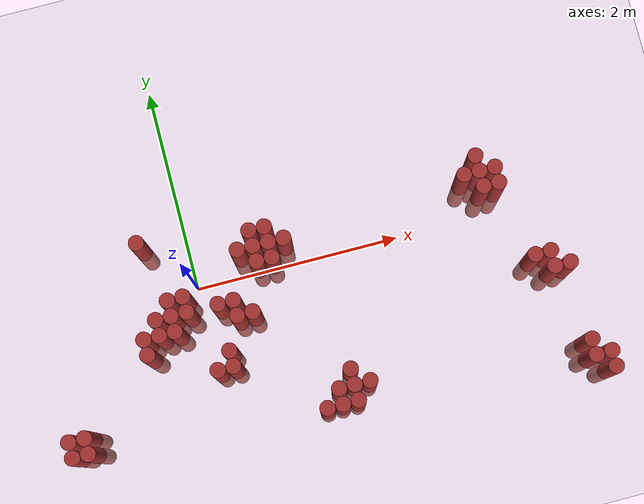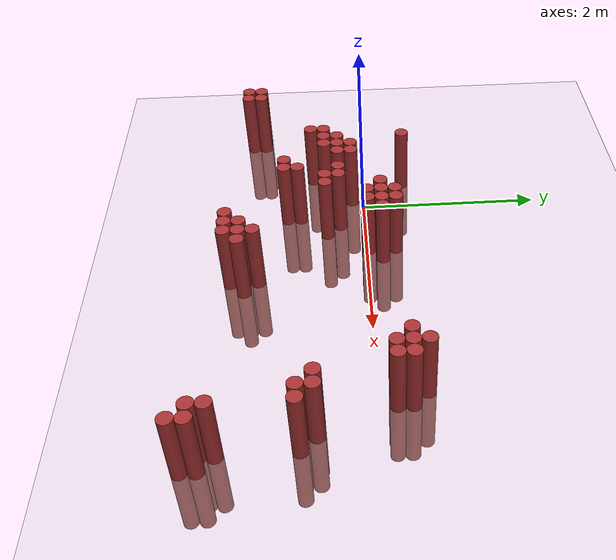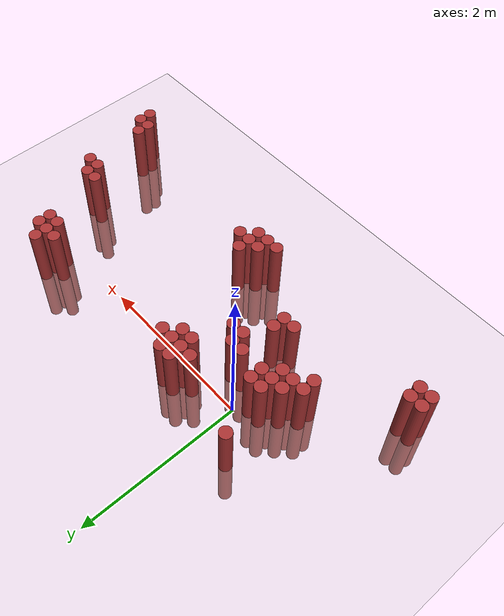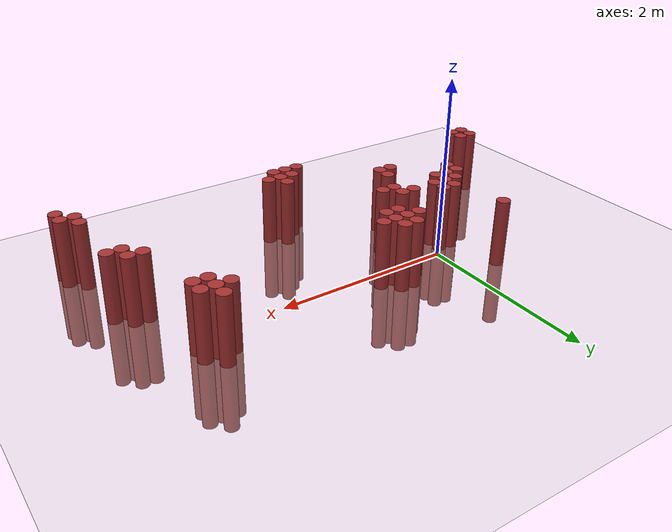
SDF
<sdf version="1.6">
 <world name="default">
  <model name="ground_plane">
   <static>1</static>
   <link name="link">
    <collision name="collision">
     <geometry><plane><normal>0 0 1</normal><size>100 100</size></plane></geometry>
     <surface><friction><ode><mu>100</mu><mu2>50</mu2></ode></friction></surface>
    </collision>
    <visual name="visual">
     <cast_shadows>0</cast_shadows>
     <geometry><plane><normal>0 0 1</normal><size>100 100</size></plane></geometry>
     <material>
      <script><uri>file://media/materials/scripts/gazebo.material</uri><name>Gazebo/Grey</name></script>
     </material>
    </visual>
   </link>
  </model>
  <model name="unit_cylinder_360">
   <static>1</static>
   <pose>-1.475000 -1.325000 0.000000 0.000000 0.000000 0.000000</pose>
   <link name="link">
    <inertial>
     <mass>1</mass>
     <inertia><ixx>0.145833</ixx><ixy>0</ixy><ixz>0</ixz><iyy>0.145833</iyy><iyz>0</iyz><izz>0.125</izz></inertia>
    </inertial>
    <collision name="collision">
     <geometry><cylinder><radius>0.075000</radius><length>1.5</length></cylinder></geometry>
    </collision>
    <visual name="visual">
     <geometry><cylinder><radius>0.075000</radius><length>1.5</length></cylinder></geometry>
     <material>
      <ambient>0.648000 0.192000 0.192000 1</ambient>
      <diffuse>0.648000 0.192000 0.192000 1</diffuse>
     </material>
     <material>
      <script><name>Gazebo/Grey</name><uri>file://media/materials/scripts/gazebo.material</uri></script>
     </material>
    </visual>
   </link>
  </model>
  <model name="unit_cylinder_361">
   <static>1</static>
   <pose>-1.475000 -1.175000 0.000000 0.000000 0.000000 0.000000</pose>
   <link name="link">
    <inertial>
     <mass>1</mass>
     <inertia><ixx>0.145833</ixx><ixy>0</ixy><ixz>0</ixz><iyy>0.145833</iyy><iyz>0</iyz><izz>0.125</izz></inertia>
    </inertial>
    <collision name="collision">
     <geometry><cylinder><radius>0.075000</radius><length>1.5</length></cylinder></geometry>
    </collision>
    <visual name="visual">
     <geometry><cylinder><radius>0.075000</radius><length>1.5</length></cylinder></geometry>
     <material>
      <ambient>0.648000 0.192000 0.192000 1</ambient>
      <diffuse>0.648000 0.192000 0.192000 1</diffuse>
     </material>
     <material>
      <script><name>Gazebo/Grey</name><uri>file://media/materials/scripts/gazebo.material</uri></script>
     </material>
    </visual>
   </link>
  </model>
  <model name="unit_cylinder_362">
   <static>1</static>
   <pose>-1.325000 -1.325000 0.000000 0.000000 0.000000 0.000000</pose>
   <link name="link">
    <inertial>
     <mass>1</mass>
     <inertia><ixx>0.145833</ixx><ixy>0</ixy><ixz>0</ixz><iyy>0.145833</iyy><iyz>0</iyz><izz>0.125</izz></inertia>
    </inertial>
    <collision name="collision">
     <geometry><cylinder><radius>0.075000</radius><length>1.5</length></cylinder></geometry>
    </collision>
    <visual name="visual">
     <geometry><cylinder><radius>0.075000</radius><length>1.5</length></cylinder></geometry>
     <material>
      <ambient>0.648000 0.192000 0.192000 1</ambient>
      <diffuse>0.648000 0.192000 0.192000 1</diffuse>
     </material>
     <material>
      <script><name>Gazebo/Grey</name><uri>file://media/materials/scripts/gazebo.material</uri></script>
     </material>
    </visual>
   </link>
  </model>
  <model name="unit_cylinder_363">
   <static>1</static>
   <pose>-1.325000 -1.175000 0.000000 0.000000 0.000000 0.000000</pose>
   <link name="link">
    <inertial>
     <mass>1</mass>
     <inertia><ixx>0.145833</ixx><ixy>0</ixy><ixz>0</ixz><iyy>0.145833</iyy><iyz>0</iyz><izz>0.125</izz></inertia>
    </inertial>
    <collision name="collision">
     <geometry><cylinder><radius>0.075000</radius><length>1.5</length></cylinder></geometry>
    </collision>
    <visual name="visual">
     <geometry><cylinder><radius>0.075000</radius><length>1.5</length></cylinder></geometry>
     <material>
      <ambient>0.648000 0.192000 0.192000 1</ambient>
      <diffuse>0.648000 0.192000 0.192000 1</diffuse>
     </material>
     <material>
      <script><name>Gazebo/Grey</name><uri>file://media/materials/scripts/gazebo.material</uri></script>
     </material>
    </visual>
   </link>
  </model>
  <model name="unit_cylinder_368">
   <static>1</static>
   <pose>-0.575000 -0.575000 0.000000 0.000000 0.000000 0.000000</pose>
   <link name="link">
    <inertial>
     <mass>1</mass>
     <inertia><ixx>0.145833</ixx><ixy>0</ixy><ixz>0</ixz><iyy>0.145833</iyy><iyz>0</iyz><izz>0.125</izz></inertia>
    </inertial>
    <collision name="collision">
     <geometry><cylinder><radius>0.075000</radius><length>1.5</length></cylinder></geometry>
    </collision>
    <visual name="visual">
     <geometry><cylinder><radius>0.075000</radius><length>1.5</length></cylinder></geometry>
     <material>
      <ambient>0.648000 0.192000 0.192000 1</ambient>
      <diffuse>0.648000 0.192000 0.192000 1</diffuse>
     </material>
     <material>
      <script><name>Gazebo/Grey</name><uri>file://media/materials/scripts/gazebo.material</uri></script>
     </material>
    </visual>
   </link>
  </model>
  <model name="unit_cylinder_369">
   <static>1</static>
   <pose>-0.575000 -0.425000 0.000000 0.000000 0.000000 0.000000</pose>
   <link name="link">
    <inertial>
     <mass>1</mass>
     <inertia><ixx>0.145833</ixx><ixy>0</ixy><ixz>0</ixz><iyy>0.145833</iyy><iyz>0</iyz><izz>0.125</izz></inertia>
    </inertial>
    <collision name="collision">
     <geometry><cylinder><radius>0.075000</radius><length>1.5</length></cylinder></geometry>
    </collision>
    <visual name="visual">
     <geometry><cylinder><radius>0.075000</radius><length>1.5</length></cylinder></geometry>
     <material>
      <ambient>0.648000 0.192000 0.192000 1</ambient>
      <diffuse>0.648000 0.192000 0.192000 1</diffuse>
     </material>
     <material>
      <script><name>Gazebo/Grey</name><uri>file://media/materials/scripts/gazebo.material</uri></script>
     </material>
    </visual>
   </link>
  </model>
  <model name="unit_cylinder_374">
   <static>1</static>
   <pose>-0.425000 -0.425000 0.000000 0.000000 0.000000 0.000000</pose>
   <link name="link">
    <inertial>
     <mass>1</mass>
     <inertia><ixx>0.145833</ixx><ixy>0</ixy><ixz>0</ixz><iyy>0.145833</iyy><iyz>0</iyz><izz>0.125</izz></inertia>
    </inertial>
    <collision name="collision">
     <geometry><cylinder><radius>0.075000</radius><length>1.5</length></cylinder></geometry>
    </collision>
    <visual name="visual">
     <geometry><cylinder><radius>0.075000</radius><length>1.5</length></cylinder></geometry>
     <material>
      <ambient>0.648000 0.192000 0.192000 1</ambient>
      <diffuse>0.648000 0.192000 0.192000 1</diffuse>
     </material>
     <material>
      <script><name>Gazebo/Grey</name><uri>file://media/materials/scripts/gazebo.material</uri></script>
     </material>
    </visual>
   </link>
  </model>
  <model name="unit_cylinder_375">
   <static>1</static>
   <pose>-0.425000 -0.275000 0.000000 0.000000 0.000000 0.000000</pose>
   <link name="link">
    <inertial>
     <mass>1</mass>
     <inertia><ixx>0.145833</ixx><ixy>0</ixy><ixz>0</ixz><iyy>0.145833</iyy><iyz>0</iyz><izz>0.125</izz></inertia>
    </inertial>
    <collision name="collision">
     <geometry><cylinder><radius>0.075000</radius><length>1.5</length></cylinder></geometry>
    </collision>
    <visual name="visual">
     <geometry><cylinder><radius>0.075000</radius><length>1.5</length></cylinder></geometry>
     <material>
      <ambient>0.648000 0.192000 0.192000 1</ambient>
      <diffuse>0.648000 0.192000 0.192000 1</diffuse>
     </material>
     <material>
      <script><name>Gazebo/Grey</name><uri>file://media/materials/scripts/gazebo.material</uri></script>
     </material>
    </visual>
   </link>
  </model>
  <model name="unit_cylinder_376">
   <static>1</static>
   <pose>-0.425000 0.475000 0.000000 0.000000 0.000000 0.000000</pose>
   <link name="link">
    <inertial>
     <mass>1</mass>
     <inertia><ixx>0.145833</ixx><ixy>0</ixy><ixz>0</ixz><iyy>0.145833</iyy><iyz>0</iyz><izz>0.125</izz></inertia>
    </inertial>
    <collision name="collision">
     <geometry><cylinder><radius>0.075000</radius><length>1.5</length></cylinder></geometry>
    </collision>
    <visual name="visual">
     <geometry><cylinder><radius>0.075000</radius><length>1.5</length></cylinder></geometry>
     <material>
      <ambient>0.648000 0.192000 0.192000 1</ambient>
      <diffuse>0.648000 0.192000 0.192000 1</diffuse>
     </material>
     <material>
      <script><name>Gazebo/Grey</name><uri>file://media/materials/scripts/gazebo.material</uri></script>
     </material>
    </visual>
   </link>
  </model>
  <model name="unit_cylinder_380">
   <static>1</static>
   <pose>-0.275000 -0.425000 0.000000 0.000000 0.000000 0.000000</pose>
   <link name="link">
    <inertial>
     <mass>1</mass>
     <inertia><ixx>0.145833</ixx><ixy>0</ixy><ixz>0</ixz><iyy>0.145833</iyy><iyz>0</iyz><izz>0.125</izz></inertia>
    </inertial>
    <collision name="collision">
     <geometry><cylinder><radius>0.075000</radius><length>1.5</length></cylinder></geometry>
    </collision>
    <visual name="visual">
     <geometry><cylinder><radius>0.075000</radius><length>1.5</length></cylinder></geometry>
     <material>
      <ambient>0.648000 0.192000 0.192000 1</ambient>
      <diffuse>0.648000 0.192000 0.192000 1</diffuse>
     </material>
     <material>
      <script><name>Gazebo/Grey</name><uri>file://media/materials/scripts/gazebo.material</uri></script>
     </material>
    </visual>
   </link>
  </model>
  <model name="unit_cylinder_381">
   <static>1</static>
   <pose>-0.275000 -0.275000 0.000000 0.000000 0.000000 0.000000</pose>
   <link name="link">
    <inertial>
     <mass>1</mass>
     <inertia><ixx>0.145833</ixx><ixy>0</ixy><ixz>0</ixz><iyy>0.145833</iyy><iyz>0</iyz><izz>0.125</izz></inertia>
    </inertial>
    <collision name="collision">
     <geometry><cylinder><radius>0.075000</radius><length>1.5</length></cylinder></geometry>
    </collision>
    <visual name="visual">
     <geometry><cylinder><radius>0.075000</radius><length>1.5</length></cylinder></geometry>
     <material>
      <ambient>0.648000 0.192000 0.192000 1</ambient>
      <diffuse>0.648000 0.192000 0.192000 1</diffuse>
     </material>
     <material>
      <script><name>Gazebo/Grey</name><uri>file://media/materials/scripts/gazebo.material</uri></script>
     </material>
    </visual>
   </link>
  </model>
  <model name="unit_cylinder_382">
   <static>1</static>
   <pose>-0.275000 -0.125000 0.000000 0.000000 0.000000 0.000000</pose>
   <link name="link">
    <inertial>
     <mass>1</mass>
     <inertia><ixx>0.145833</ixx><ixy>0</ixy><ixz>0</ixz><iyy>0.145833</iyy><iyz>0</iyz><izz>0.125</izz></inertia>
    </inertial>
    <collision name="collision">
     <geometry><cylinder><radius>0.075000</radius><length>1.5</length></cylinder></geometry>
    </collision>
    <visual name="visual">
     <geometry><cylinder><radius>0.075000</radius><length>1.5</length></cylinder></geometry>
     <material>
      <ambient>0.648000 0.192000 0.192000 1</ambient>
      <diffuse>0.648000 0.192000 0.192000 1</diffuse>
     </material>
     <material>
      <script><name>Gazebo/Grey</name><uri>file://media/materials/scripts/gazebo.material</uri></script>
     </material>
    </visual>
   </link>
  </model>
  <model name="unit_cylinder_388">
   <static>1</static>
   <pose>-0.125000 -0.275000 0.000000 0.000000 0.000000 0.000000</pose>
   <link name="link">
    <inertial>
     <mass>1</mass>
     <inertia><ixx>0.145833</ixx><ixy>0</ixy><ixz>0</ixz><iyy>0.145833</iyy><iyz>0</iyz><izz>0.125</izz></inertia>
    </inertial>
    <collision name="collision">
     <geometry><cylinder><radius>0.075000</radius><length>1.5</length></cylinder></geometry>
    </collision>
    <visual name="visual">
     <geometry><cylinder><radius>0.075000</radius><length>1.5</length></cylinder></geometry>
     <material>
      <ambient>0.648000 0.192000 0.192000 1</ambient>
      <diffuse>0.648000 0.192000 0.192000 1</diffuse>
     </material>
     <material>
      <script><name>Gazebo/Grey</name><uri>file://media/materials/scripts/gazebo.material</uri></script>
     </material>
    </visual>
   </link>
  </model>
  <model name="unit_cylinder_389">
   <static>1</static>
   <pose>-0.125000 -0.125000 0.000000 0.000000 0.000000 0.000000</pose>
   <link name="link">
    <inertial>
     <mass>1</mass>
     <inertia><ixx>0.145833</ixx><ixy>0</ixy><ixz>0</ixz><iyy>0.145833</iyy><iyz>0</iyz><izz>0.125</izz></inertia>
    </inertial>
    <collision name="collision">
     <geometry><cylinder><radius>0.075000</radius><length>1.5</length></cylinder></geometry>
    </collision>
    <visual name="visual">
     <geometry><cylinder><radius>0.075000</radius><length>1.5</length></cylinder></geometry>
     <material>
      <ambient>0.648000 0.192000 0.192000 1</ambient>
      <diffuse>0.648000 0.192000 0.192000 1</diffuse>
     </material>
     <material>
      <script><name>Gazebo/Grey</name><uri>file://media/materials/scripts/gazebo.material</uri></script>
     </material>
    </visual>
   </link>
  </model>
  <model name="unit_cylinder_394">
   <static>1</static>
   <pose>0.025000 -0.875000 0.000000 0.000000 0.000000 0.000000</pose>
   <link name="link">
    <inertial>
     <mass>1</mass>
     <inertia><ixx>0.145833</ixx><ixy>0</ixy><ixz>0</ixz><iyy>0.145833</iyy><iyz>0</iyz><izz>0.125</izz></inertia>
    </inertial>
    <collision name="collision">
     <geometry><cylinder><radius>0.075000</radius><length>1.5</length></cylinder></geometry>
    </collision>
    <visual name="visual">
     <geometry><cylinder><radius>0.075000</radius><length>1.5</length></cylinder></geometry>
     <material>
      <ambient>0.648000 0.192000 0.192000 1</ambient>
      <diffuse>0.648000 0.192000 0.192000 1</diffuse>
     </material>
     <material>
      <script><name>Gazebo/Grey</name><uri>file://media/materials/scripts/gazebo.material</uri></script>
     </material>
    </visual>
   </link>
  </model>
  <model name="unit_cylinder_399">
   <static>1</static>
   <pose>0.175000 -0.875000 0.000000 0.000000 0.000000 0.000000</pose>
   <link name="link">
    <inertial>
     <mass>1</mass>
     <inertia><ixx>0.145833</ixx><ixy>0</ixy><ixz>0</ixz><iyy>0.145833</iyy><iyz>0</iyz><izz>0.125</izz></inertia>
    </inertial>
    <collision name="collision">
     <geometry><cylinder><radius>0.075000</radius><length>1.5</length></cylinder></geometry>
    </collision>
    <visual name="visual">
     <geometry><cylinder><radius>0.075000</radius><length>1.5</length></cylinder></geometry>
     <material>
      <ambient>0.648000 0.192000 0.192000 1</ambient>
      <diffuse>0.648000 0.192000 0.192000 1</diffuse>
     </material>
     <material>
      <script><name>Gazebo/Grey</name><uri>file://media/materials/scripts/gazebo.material</uri></script>
     </material>
    </visual>
   </link>
  </model>
  <model name="unit_cylinder_400">
   <static>1</static>
   <pose>0.175000 -0.725000 0.000000 0.000000 0.000000 0.000000</pose>
   <link name="link">
    <inertial>
     <mass>1</mass>
     <inertia><ixx>0.145833</ixx><ixy>0</ixy><ixz>0</ixz><iyy>0.145833</iyy><iyz>0</iyz><izz>0.125</izz></inertia>
    </inertial>
    <collision name="collision">
     <geometry><cylinder><radius>0.075000</radius><length>1.5</length></cylinder></geometry>
    </collision>
    <visual name="visual">
     <geometry><cylinder><radius>0.075000</radius><length>1.5</length></cylinder></geometry>
     <material>
      <ambient>0.648000 0.192000 0.192000 1</ambient>
      <diffuse>0.648000 0.192000 0.192000 1</diffuse>
     </material>
     <material>
      <script><name>Gazebo/Grey</name><uri>file://media/materials/scripts/gazebo.material</uri></script>
     </material>
    </visual>
   </link>
  </model>
  <model name="unit_cylinder_401">
   <static>1</static>
   <pose>0.175000 -0.275000 0.000000 0.000000 0.000000 0.000000</pose>
   <link name="link">
    <inertial>
     <mass>1</mass>
     <inertia><ixx>0.145833</ixx><ixy>0</ixy><ixz>0</ixz><iyy>0.145833</iyy><iyz>0</iyz><izz>0.125</izz></inertia>
    </inertial>
    <collision name="collision">
     <geometry><cylinder><radius>0.075000</radius><length>1.5</length></cylinder></geometry>
    </collision>
    <visual name="visual">
     <geometry><cylinder><radius>0.075000</radius><length>1.5</length></cylinder></geometry>
     <material>
      <ambient>0.648000 0.192000 0.192000 1</ambient>
      <diffuse>0.648000 0.192000 0.192000 1</diffuse>
     </material>
     <material>
      <script><name>Gazebo/Grey</name><uri>file://media/materials/scripts/gazebo.material</uri></script>
     </material>
    </visual>
   </link>
  </model>
  <model name="unit_cylinder_404">
   <static>1</static>
   <pose>0.325000 -0.425000 0.000000 0.000000 0.000000 0.000000</pose>
   <link name="link">
    <inertial>
     <mass>1</mass>
     <inertia><ixx>0.145833</ixx><ixy>0</ixy><ixz>0</ixz><iyy>0.145833</iyy><iyz>0</iyz><izz>0.125</izz></inertia>
    </inertial>
    <collision name="collision">
     <geometry><cylinder><radius>0.075000</radius><length>1.5</length></cylinder></geometry>
    </collision>
    <visual name="visual">
     <geometry><cylinder><radius>0.075000</radius><length>1.5</length></cylinder></geometry>
     <material>
      <ambient>0.648000 0.192000 0.192000 1</ambient>
      <diffuse>0.648000 0.192000 0.192000 1</diffuse>
     </material>
     <material>
      <script><name>Gazebo/Grey</name><uri>file://media/materials/scripts/gazebo.material</uri></script>
     </material>
    </visual>
   </link>
  </model>
  <model name="unit_cylinder_405">
   <static>1</static>
   <pose>0.325000 -0.275000 0.000000 0.000000 0.000000 0.000000</pose>
   <link name="link">
    <inertial>
     <mass>1</mass>
     <inertia><ixx>0.145833</ixx><ixy>0</ixy><ixz>0</ixz><iyy>0.145833</iyy><iyz>0</iyz><izz>0.125</izz></inertia>
    </inertial>
    <collision name="collision">
     <geometry><cylinder><radius>0.075000</radius><length>1.5</length></cylinder></geometry>
    </collision>
    <visual name="visual">
     <geometry><cylinder><radius>0.075000</radius><length>1.5</length></cylinder></geometry>
     <material>
      <ambient>0.648000 0.192000 0.192000 1</ambient>
      <diffuse>0.648000 0.192000 0.192000 1</diffuse>
     </material>
     <material>
      <script><name>Gazebo/Grey</name><uri>file://media/materials/scripts/gazebo.material</uri></script>
     </material>
    </visual>
   </link>
  </model>
  <model name="unit_cylinder_407">
   <static>1</static>
   <pose>0.475000 -0.425000 0.000000 0.000000 0.000000 0.000000</pose>
   <link name="link">
    <inertial>
     <mass>1</mass>
     <inertia><ixx>0.145833</ixx><ixy>0</ixy><ixz>0</ixz><iyy>0.145833</iyy><iyz>0</iyz><izz>0.125</izz></inertia>
    </inertial>
    <collision name="collision">
     <geometry><cylinder><radius>0.075000</radius><length>1.5</length></cylinder></geometry>
    </collision>
    <visual name="visual">
     <geometry><cylinder><radius>0.075000</radius><length>1.5</length></cylinder></geometry>
     <material>
      <ambient>0.648000 0.192000 0.192000 1</ambient>
      <diffuse>0.648000 0.192000 0.192000 1</diffuse>
     </material>
     <material>
      <script><name>Gazebo/Grey</name><uri>file://media/materials/scripts/gazebo.material</uri></script>
     </material>
    </visual>
   </link>
  </model>
  <model name="unit_cylinder_408">
   <static>1</static>
   <pose>0.475000 0.175000 0.000000 0.000000 0.000000 0.000000</pose>
   <link name="link">
    <inertial>
     <mass>1</mass>
     <inertia><ixx>0.145833</ixx><ixy>0</ixy><ixz>0</ixz><iyy>0.145833</iyy><iyz>0</iyz><izz>0.125</izz></inertia>
    </inertial>
    <collision name="collision">
     <geometry><cylinder><radius>0.075000</radius><length>1.5</length></cylinder></geometry>
    </collision>
    <visual name="visual">
     <geometry><cylinder><radius>0.075000</radius><length>1.5</length></cylinder></geometry>
     <material>
      <ambient>0.648000 0.192000 0.192000 1</ambient>
      <diffuse>0.648000 0.192000 0.192000 1</diffuse>
     </material>
     <material>
      <script><name>Gazebo/Grey</name><uri>file://media/materials/scripts/gazebo.material</uri></script>
     </material>
    </visual>
   </link>
  </model>
  <model name="unit_cylinder_411">
   <static>1</static>
   <pose>0.625000 0.025000 0.000000 0.000000 0.000000 0.000000</pose>
   <link name="link">
    <inertial>
     <mass>1</mass>
     <inertia><ixx>0.145833</ixx><ixy>0</ixy><ixz>0</ixz><iyy>0.145833</iyy><iyz>0</iyz><izz>0.125</izz></inertia>
    </inertial>
    <collision name="collision">
     <geometry><cylinder><radius>0.075000</radius><length>1.5</length></cylinder></geometry>
    </collision>
    <visual name="visual">
     <geometry><cylinder><radius>0.075000</radius><length>1.5</length></cylinder></geometry>
     <material>
      <ambient>0.648000 0.192000 0.192000 1</ambient>
      <diffuse>0.648000 0.192000 0.192000 1</diffuse>
     </material>
     <material>
      <script><name>Gazebo/Grey</name><uri>file://media/materials/scripts/gazebo.material</uri></script>
     </material>
    </visual>
   </link>
  </model>
  <model name="unit_cylinder_412">
   <static>1</static>
   <pose>0.625000 0.175000 0.000000 0.000000 0.000000 0.000000</pose>
   <link name="link">
    <inertial>
     <mass>1</mass>
     <inertia><ixx>0.145833</ixx><ixy>0</ixy><ixz>0</ixz><iyy>0.145833</iyy><iyz>0</iyz><izz>0.125</izz></inertia>
    </inertial>
    <collision name="collision">
     <geometry><cylinder><radius>0.075000</radius><length>1.5</length></cylinder></geometry>
    </collision>
    <visual name="visual">
     <geometry><cylinder><radius>0.075000</radius><length>1.5</length></cylinder></geometry>
     <material>
      <ambient>0.648000 0.192000 0.192000 1</ambient>
      <diffuse>0.648000 0.192000 0.192000 1</diffuse>
     </material>
     <material>
      <script><name>Gazebo/Grey</name><uri>file://media/materials/scripts/gazebo.material</uri></script>
     </material>
    </visual>
   </link>
  </model>
  <model name="unit_cylinder_413">
   <static>1</static>
   <pose>0.625000 0.325000 0.000000 0.000000 0.000000 0.000000</pose>
   <link name="link">
    <inertial>
     <mass>1</mass>
     <inertia><ixx>0.145833</ixx><ixy>0</ixy><ixz>0</ixz><iyy>0.145833</iyy><iyz>0</iyz><izz>0.125</izz></inertia>
    </inertial>
    <collision name="collision">
     <geometry><cylinder><radius>0.075000</radius><length>1.5</length></cylinder></geometry>
    </collision>
    <visual name="visual">
     <geometry><cylinder><radius>0.075000</radius><length>1.5</length></cylinder></geometry>
     <material>
      <ambient>0.648000 0.192000 0.192000 1</ambient>
      <diffuse>0.648000 0.192000 0.192000 1</diffuse>
     </material>
     <material>
      <script><name>Gazebo/Grey</name><uri>file://media/materials/scripts/gazebo.material</uri></script>
     </material>
    </visual>
   </link>
  </model>
  <model name="unit_cylinder_414">
   <static>1</static>
   <pose>0.775000 0.025000 0.000000 0.000000 0.000000 0.000000</pose>
   <link name="link">
    <inertial>
     <mass>1</mass>
     <inertia><ixx>0.145833</ixx><ixy>0</ixy><ixz>0</ixz><iyy>0.145833</iyy><iyz>0</iyz><izz>0.125</izz></inertia>
    </inertial>
    <collision name="collision">
     <geometry><cylinder><radius>0.075000</radius><length>1.5</length></cylinder></geometry>
    </collision>
    <visual name="visual">
     <geometry><cylinder><radius>0.075000</radius><length>1.5</length></cylinder></geometry>
     <material>
      <ambient>0.648000 0.192000 0.192000 1</ambient>
      <diffuse>0.648000 0.192000 0.192000 1</diffuse>
     </material>
     <material>
      <script><name>Gazebo/Grey</name><uri>file://media/materials/scripts/gazebo.material</uri></script>
     </material>
    </visual>
   </link>
  </model>
  <model name="unit_cylinder_415">
   <static>1</static>
   <pose>0.775000 0.175000 0.000000 0.000000 0.000000 0.000000</pose>
   <link name="link">
    <inertial>
     <mass>1</mass>
     <inertia><ixx>0.145833</ixx><ixy>0</ixy><ixz>0</ixz><iyy>0.145833</iyy><iyz>0</iyz><izz>0.125</izz></inertia>
    </inertial>
    <collision name="collision">
     <geometry><cylinder><radius>0.075000</radius><length>1.5</length></cylinder></geometry>
    </collision>
    <visual name="visual">
     <geometry><cylinder><radius>0.075000</radius><length>1.5</length></cylinder></geometry>
     <material>
      <ambient>0.648000 0.192000 0.192000 1</ambient>
      <diffuse>0.648000 0.192000 0.192000 1</diffuse>
     </material>
     <material>
      <script><name>Gazebo/Grey</name><uri>file://media/materials/scripts/gazebo.material</uri></script>
     </material>
    </visual>
   </link>
  </model>
  <model name="unit_cylinder_416">
   <static>1</static>
   <pose>0.775000 0.325000 0.000000 0.000000 0.000000 0.000000</pose>
   <link name="link">
    <inertial>
     <mass>1</mass>
     <inertia><ixx>0.145833</ixx><ixy>0</ixy><ixz>0</ixz><iyy>0.145833</iyy><iyz>0</iyz><izz>0.125</izz></inertia>
    </inertial>
    <collision name="collision">
     <geometry><cylinder><radius>0.075000</radius><length>1.5</length></cylinder></geometry>
    </collision>
    <visual name="visual">
     <geometry><cylinder><radius>0.075000</radius><length>1.5</length></cylinder></geometry>
     <material>
      <ambient>0.648000 0.192000 0.192000 1</ambient>
      <diffuse>0.648000 0.192000 0.192000 1</diffuse>
     </material>
     <material>
      <script><name>Gazebo/Grey</name><uri>file://media/materials/scripts/gazebo.material</uri></script>
     </material>
    </visual>
   </link>
  </model>
  <model name="unit_cylinder_418">
   <static>1</static>
   <pose>0.925000 -1.475000 0.000000 0.000000 0.000000 0.000000</pose>
   <link name="link">
    <inertial>
     <mass>1</mass>
     <inertia><ixx>0.145833</ixx><ixy>0</ixy><ixz>0</ixz><iyy>0.145833</iyy><iyz>0</iyz><izz>0.125</izz></inertia>
    </inertial>
    <collision name="collision">
     <geometry><cylinder><radius>0.075000</radius><length>1.5</length></cylinder></geometry>
    </collision>
    <visual name="visual">
     <geometry><cylinder><radius>0.075000</radius><length>1.5</length></cylinder></geometry>
     <material>
      <ambient>0.648000 0.192000 0.192000 1</ambient>
      <diffuse>0.648000 0.192000 0.192000 1</diffuse>
     </material>
     <material>
      <script><name>Gazebo/Grey</name><uri>file://media/materials/scripts/gazebo.material</uri></script>
     </material>
    </visual>
   </link>
  </model>
  <model name="unit_cylinder_419">
   <static>1</static>
   <pose>0.925000 0.175000 0.000000 0.000000 0.000000 0.000000</pose>
   <link name="link">
    <inertial>
     <mass>1</mass>
     <inertia><ixx>0.145833</ixx><ixy>0</ixy><ixz>0</ixz><iyy>0.145833</iyy><iyz>0</iyz><izz>0.125</izz></inertia>
    </inertial>
    <collision name="collision">
     <geometry><cylinder><radius>0.075000</radius><length>1.5</length></cylinder></geometry>
    </collision>
    <visual name="visual">
     <geometry><cylinder><radius>0.075000</radius><length>1.5</length></cylinder></geometry>
     <material>
      <ambient>0.648000 0.192000 0.192000 1</ambient>
      <diffuse>0.648000 0.192000 0.192000 1</diffuse>
     </material>
     <material>
      <script><name>Gazebo/Grey</name><uri>file://media/materials/scripts/gazebo.material</uri></script>
     </material>
    </visual>
   </link>
  </model>
  <model name="unit_cylinder_423">
   <static>1</static>
   <pose>1.075000 -1.475000 0.000000 0.000000 0.000000 0.000000</pose>
   <link name="link">
    <inertial>
     <mass>1</mass>
     <inertia><ixx>0.145833</ixx><ixy>0</ixy><ixz>0</ixz><iyy>0.145833</iyy><iyz>0</iyz><izz>0.125</izz></inertia>
    </inertial>
    <collision name="collision">
     <geometry><cylinder><radius>0.075000</radius><length>1.5</length></cylinder></geometry>
    </collision>
    <visual name="visual">
     <geometry><cylinder><radius>0.075000</radius><length>1.5</length></cylinder></geometry>
     <material>
      <ambient>0.648000 0.192000 0.192000 1</ambient>
      <diffuse>0.648000 0.192000 0.192000 1</diffuse>
     </material>
     <material>
      <script><name>Gazebo/Grey</name><uri>file://media/materials/scripts/gazebo.material</uri></script>
     </material>
    </visual>
   </link>
  </model>
  <model name="unit_cylinder_424">
   <static>1</static>
   <pose>1.075000 -1.325000 0.000000 0.000000 0.000000 0.000000</pose>
   <link name="link">
    <inertial>
     <mass>1</mass>
     <inertia><ixx>0.145833</ixx><ixy>0</ixy><ixz>0</ixz><iyy>0.145833</iyy><iyz>0</iyz><izz>0.125</izz></inertia>
    </inertial>
    <collision name="collision">
     <geometry><cylinder><radius>0.075000</radius><length>1.5</length></cylinder></geometry>
    </collision>
    <visual name="visual">
     <geometry><cylinder><radius>0.075000</radius><length>1.5</length></cylinder></geometry>
     <material>
      <ambient>0.648000 0.192000 0.192000 1</ambient>
      <diffuse>0.648000 0.192000 0.192000 1</diffuse>
     </material>
     <material>
      <script><name>Gazebo/Grey</name><uri>file://media/materials/scripts/gazebo.material</uri></script>
     </material>
    </visual>
   </link>
  </model>
  <model name="unit_cylinder_425">
   <static>1</static>
   <pose>1.225000 -1.475000 0.000000 0.000000 0.000000 0.000000</pose>
   <link name="link">
    <inertial>
     <mass>1</mass>
     <inertia><ixx>0.145833</ixx><ixy>0</ixy><ixz>0</ixz><iyy>0.145833</iyy><iyz>0</iyz><izz>0.125</izz></inertia>
    </inertial>
    <collision name="collision">
     <geometry><cylinder><radius>0.075000</radius><length>1.5</length></cylinder></geometry>
    </collision>
    <visual name="visual">
     <geometry><cylinder><radius>0.075000</radius><length>1.5</length></cylinder></geometry>
     <material>
      <ambient>0.648000 0.192000 0.192000 1</ambient>
      <diffuse>0.648000 0.192000 0.192000 1</diffuse>
     </material>
     <material>
      <script><name>Gazebo/Grey</name><uri>file://media/materials/scripts/gazebo.material</uri></script>
     </material>
    </visual>
   </link>
  </model>
  <model name="unit_cylinder_426">
   <static>1</static>
   <pose>1.225000 -1.325000 0.000000 0.000000 0.000000 0.000000</pose>
   <link name="link">
    <inertial>
     <mass>1</mass>
     <inertia><ixx>0.145833</ixx><ixy>0</ixy><ixz>0</ixz><iyy>0.145833</iyy><iyz>0</iyz><izz>0.125</izz></inertia>
    </inertial>
    <collision name="collision">
     <geometry><cylinder><radius>0.075000</radius><length>1.5</length></cylinder></geometry>
    </collision>
    <visual name="visual">
     <geometry><cylinder><radius>0.075000</radius><length>1.5</length></cylinder></geometry>
     <material>
      <ambient>0.648000 0.192000 0.192000 1</ambient>
      <diffuse>0.648000 0.192000 0.192000 1</diffuse>
     </material>
     <material>
      <script><name>Gazebo/Grey</name><uri>file://media/materials/scripts/gazebo.material</uri></script>
     </material>
    </visual>
   </link>
  </model>
  <model name="unit_cylinder_427">
   <static>1</static>
   <pose>1.225000 -1.175000 0.000000 0.000000 0.000000 0.000000</pose>
   <link name="link">
    <inertial>
     <mass>1</mass>
     <inertia><ixx>0.145833</ixx><ixy>0</ixy><ixz>0</ixz><iyy>0.145833</iyy><iyz>0</iyz><izz>0.125</izz></inertia>
    </inertial>
    <collision name="collision">
     <geometry><cylinder><radius>0.075000</radius><length>1.5</length></cylinder></geometry>
    </collision>
    <visual name="visual">
     <geometry><cylinder><radius>0.075000</radius><length>1.5</length></cylinder></geometry>
     <material>
      <ambient>0.648000 0.192000 0.192000 1</ambient>
      <diffuse>0.648000 0.192000 0.192000 1</diffuse>
     </material>
     <material>
      <script><name>Gazebo/Grey</name><uri>file://media/materials/scripts/gazebo.material</uri></script>
     </material>
    </visual>
   </link>
  </model>
  <model name="unit_cylinder_428">
   <static>1</static>
   <pose>1.375000 -1.325000 0.000000 0.000000 0.000000 0.000000</pose>
   <link name="link">
    <inertial>
     <mass>1</mass>
     <inertia><ixx>0.145833</ixx><ixy>0</ixy><ixz>0</ixz><iyy>0.145833</iyy><iyz>0</iyz><izz>0.125</izz></inertia>
    </inertial>
    <collision name="collision">
     <geometry><cylinder><radius>0.075000</radius><length>1.5</length></cylinder></geometry>
    </collision>
    <visual name="visual">
     <geometry><cylinder><radius>0.075000</radius><length>1.5</length></cylinder></geometry>
     <material>
      <ambient>0.648000 0.192000 0.192000 1</ambient>
      <diffuse>0.648000 0.192000 0.192000 1</diffuse>
     </material>
     <material>
      <script><name>Gazebo/Grey</name><uri>file://media/materials/scripts/gazebo.material</uri></script>
     </material>
    </visual>
   </link>
  </model>
  <model name="unit_cylinder_447">
   <static>1</static>
   <pose>2.725000 0.325000 0.000000 0.000000 0.000000 0.000000</pose>
   <link name="link">
    <inertial>
     <mass>1</mass>
     <inertia><ixx>0.145833</ixx><ixy>0</ixy><ixz>0</ixz><iyy>0.145833</iyy><iyz>0</iyz><izz>0.125</izz></inertia>
    </inertial>
    <collision name="collision">
     <geometry><cylinder><radius>0.075000</radius><length>1.5</length></cylinder></geometry>
    </collision>
    <visual name="visual">
     <geometry><cylinder><radius>0.075000</radius><length>1.5</length></cylinder></geometry>
     <material>
      <ambient>0.648000 0.192000 0.192000 1</ambient>
      <diffuse>0.648000 0.192000 0.192000 1</diffuse>
     </material>
     <material>
      <script><name>Gazebo/Grey</name><uri>file://media/materials/scripts/gazebo.material</uri></script>
     </material>
    </visual>
   </link>
  </model>
  <model name="unit_cylinder_451">
   <static>1</static>
   <pose>2.875000 0.175000 0.000000 0.000000 0.000000 0.000000</pose>
   <link name="link">
    <inertial>
     <mass>1</mass>
     <inertia><ixx>0.145833</ixx><ixy>0</ixy><ixz>0</ixz><iyy>0.145833</iyy><iyz>0</iyz><izz>0.125</izz></inertia>
    </inertial>
    <collision name="collision">
     <geometry><cylinder><radius>0.075000</radius><length>1.5</length></cylinder></geometry>
    </collision>
    <visual name="visual">
     <geometry><cylinder><radius>0.075000</radius><length>1.5</length></cylinder></geometry>
     <material>
      <ambient>0.648000 0.192000 0.192000 1</ambient>
      <diffuse>0.648000 0.192000 0.192000 1</diffuse>
     </material>
     <material>
      <script><name>Gazebo/Grey</name><uri>file://media/materials/scripts/gazebo.material</uri></script>
     </material>
    </visual>
   </link>
  </model>
  <model name="unit_cylinder_452">
   <static>1</static>
   <pose>2.875000 0.325000 0.000000 0.000000 0.000000 0.000000</pose>
   <link name="link">
    <inertial>
     <mass>1</mass>
     <inertia><ixx>0.145833</ixx><ixy>0</ixy><ixz>0</ixz><iyy>0.145833</iyy><iyz>0</iyz><izz>0.125</izz></inertia>
    </inertial>
    <collision name="collision">
     <geometry><cylinder><radius>0.075000</radius><length>1.5</length></cylinder></geometry>
    </collision>
    <visual name="visual">
     <geometry><cylinder><radius>0.075000</radius><length>1.5</length></cylinder></geometry>
     <material>
      <ambient>0.648000 0.192000 0.192000 1</ambient>
      <diffuse>0.648000 0.192000 0.192000 1</diffuse>
     </material>
     <material>
      <script><name>Gazebo/Grey</name><uri>file://media/materials/scripts/gazebo.material</uri></script>
     </material>
    </visual>
   </link>
  </model>
  <model name="unit_cylinder_453">
   <static>1</static>
   <pose>2.875000 0.475000 0.000000 0.000000 0.000000 0.000000</pose>
   <link name="link">
    <inertial>
     <mass>1</mass>
     <inertia><ixx>0.145833</ixx><ixy>0</ixy><ixz>0</ixz><iyy>0.145833</iyy><iyz>0</iyz><izz>0.125</izz></inertia>
    </inertial>
    <collision name="collision">
     <geometry><cylinder><radius>0.075000</radius><length>1.5</length></cylinder></geometry>
    </collision>
    <visual name="visual">
     <geometry><cylinder><radius>0.075000</radius><length>1.5</length></cylinder></geometry>
     <material>
      <ambient>0.648000 0.192000 0.192000 1</ambient>
      <diffuse>0.648000 0.192000 0.192000 1</diffuse>
     </material>
     <material>
      <script><name>Gazebo/Grey</name><uri>file://media/materials/scripts/gazebo.material</uri></script>
     </material>
    </visual>
   </link>
  </model>
  <model name="unit_cylinder_459">
   <static>1</static>
   <pose>3.025000 0.175000 0.000000 0.000000 0.000000 0.000000</pose>
   <link name="link">
    <inertial>
     <mass>1</mass>
     <inertia><ixx>0.145833</ixx><ixy>0</ixy><ixz>0</ixz><iyy>0.145833</iyy><iyz>0</iyz><izz>0.125</izz></inertia>
    </inertial>
    <collision name="collision">
     <geometry><cylinder><radius>0.075000</radius><length>1.5</length></cylinder></geometry>
    </collision>
    <visual name="visual">
     <geometry><cylinder><radius>0.075000</radius><length>1.5</length></cylinder></geometry>
     <material>
      <ambient>0.648000 0.192000 0.192000 1</ambient>
      <diffuse>0.648000 0.192000 0.192000 1</diffuse>
     </material>
     <material>
      <script><name>Gazebo/Grey</name><uri>file://media/materials/scripts/gazebo.material</uri></script>
     </material>
    </visual>
   </link>
  </model>
  <model name="unit_cylinder_460">
   <static>1</static>
   <pose>3.025000 0.325000 0.000000 0.000000 0.000000 0.000000</pose>
   <link name="link">
    <inertial>
     <mass>1</mass>
     <inertia><ixx>0.145833</ixx><ixy>0</ixy><ixz>0</ixz><iyy>0.145833</iyy><iyz>0</iyz><izz>0.125</izz></inertia>
    </inertial>
    <collision name="collision">
     <geometry><cylinder><radius>0.075000</radius><length>1.5</length></cylinder></geometry>
    </collision>
    <visual name="visual">
     <geometry><cylinder><radius>0.075000</radius><length>1.5</length></cylinder></geometry>
     <material>
      <ambient>0.648000 0.192000 0.192000 1</ambient>
      <diffuse>0.648000 0.192000 0.192000 1</diffuse>
     </material>
     <material>
      <script><name>Gazebo/Grey</name><uri>file://media/materials/scripts/gazebo.material</uri></script>
     </material>
    </visual>
   </link>
  </model>
  <model name="unit_cylinder_465">
   <static>1</static>
   <pose>3.175000 -0.575000 0.000000 0.000000 0.000000 0.000000</pose>
   <link name="link">
    <inertial>
     <mass>1</mass>
     <inertia><ixx>0.145833</ixx><ixy>0</ixy><ixz>0</ixz><iyy>0.145833</iyy><iyz>0</iyz><izz>0.125</izz></inertia>
    </inertial>
    <collision name="collision">
     <geometry><cylinder><radius>0.075000</radius><length>1.5</length></cylinder></geometry>
    </collision>
    <visual name="visual">
     <geometry><cylinder><radius>0.075000</radius><length>1.5</length></cylinder></geometry>
     <material>
      <ambient>0.648000 0.192000 0.192000 1</ambient>
      <diffuse>0.648000 0.192000 0.192000 1</diffuse>
     </material>
     <material>
      <script><name>Gazebo/Grey</name><uri>file://media/materials/scripts/gazebo.material</uri></script>
     </material>
    </visual>
   </link>
  </model>
  <model name="unit_cylinder_469">
   <static>1</static>
   <pose>3.325000 -0.725000 0.000000 0.000000 0.000000 0.000000</pose>
   <link name="link">
    <inertial>
     <mass>1</mass>
     <inertia><ixx>0.145833</ixx><ixy>0</ixy><ixz>0</ixz><iyy>0.145833</iyy><iyz>0</iyz><izz>0.125</izz></inertia>
    </inertial>
    <collision name="collision">
     <geometry><cylinder><radius>0.075000</radius><length>1.5</length></cylinder></geometry>
    </collision>
    <visual name="visual">
     <geometry><cylinder><radius>0.075000</radius><length>1.5</length></cylinder></geometry>
     <material>
      <ambient>0.648000 0.192000 0.192000 1</ambient>
      <diffuse>0.648000 0.192000 0.192000 1</diffuse>
     </material>
     <material>
      <script><name>Gazebo/Grey</name><uri>file://media/materials/scripts/gazebo.material</uri></script>
     </material>
    </visual>
   </link>
  </model>
  <model name="unit_cylinder_470">
   <static>1</static>
   <pose>3.325000 -0.575000 0.000000 0.000000 0.000000 0.000000</pose>
   <link name="link">
    <inertial>
     <mass>1</mass>
     <inertia><ixx>0.145833</ixx><ixy>0</ixy><ixz>0</ixz><iyy>0.145833</iyy><iyz>0</iyz><izz>0.125</izz></inertia>
    </inertial>
    <collision name="collision">
     <geometry><cylinder><radius>0.075000</radius><length>1.5</length></cylinder></geometry>
    </collision>
    <visual name="visual">
     <geometry><cylinder><radius>0.075000</radius><length>1.5</length></cylinder></geometry>
     <material>
      <ambient>0.648000 0.192000 0.192000 1</ambient>
      <diffuse>0.648000 0.192000 0.192000 1</diffuse>
     </material>
     <material>
      <script><name>Gazebo/Grey</name><uri>file://media/materials/scripts/gazebo.material</uri></script>
     </material>
    </visual>
   </link>
  </model>
  <model name="unit_cylinder_472">
   <static>1</static>
   <pose>3.475000 -1.625000 0.000000 0.000000 0.000000 0.000000</pose>
   <link name="link">
    <inertial>
     <mass>1</mass>
     <inertia><ixx>0.145833</ixx><ixy>0</ixy><ixz>0</ixz><iyy>0.145833</iyy><iyz>0</iyz><izz>0.125</izz></inertia>
    </inertial>
    <collision name="collision">
     <geometry><cylinder><radius>0.075000</radius><length>1.5</length></cylinder></geometry>
    </collision>
    <visual name="visual">
     <geometry><cylinder><radius>0.075000</radius><length>1.5</length></cylinder></geometry>
     <material>
      <ambient>0.648000 0.192000 0.192000 1</ambient>
      <diffuse>0.648000 0.192000 0.192000 1</diffuse>
     </material>
     <material>
      <script><name>Gazebo/Grey</name><uri>file://media/materials/scripts/gazebo.material</uri></script>
     </material>
    </visual>
   </link>
  </model>
  <model name="unit_cylinder_473">
   <static>1</static>
   <pose>3.475000 -1.475000 0.000000 0.000000 0.000000 0.000000</pose>
   <link name="link">
    <inertial>
     <mass>1</mass>
     <inertia><ixx>0.145833</ixx><ixy>0</ixy><ixz>0</ixz><iyy>0.145833</iyy><iyz>0</iyz><izz>0.125</izz></inertia>
    </inertial>
    <collision name="collision">
     <geometry><cylinder><radius>0.075000</radius><length>1.5</length></cylinder></geometry>
    </collision>
    <visual name="visual">
     <geometry><cylinder><radius>0.075000</radius><length>1.5</length></cylinder></geometry>
     <material>
      <ambient>0.648000 0.192000 0.192000 1</ambient>
      <diffuse>0.648000 0.192000 0.192000 1</diffuse>
     </material>
     <material>
      <script><name>Gazebo/Grey</name><uri>file://media/materials/scripts/gazebo.material</uri></script>
     </material>
    </visual>
   </link>
  </model>
  <model name="unit_cylinder_474">
   <static>1</static>
   <pose>3.475000 -0.725000 0.000000 0.000000 0.000000 0.000000</pose>
   <link name="link">
    <inertial>
     <mass>1</mass>
     <inertia><ixx>0.145833</ixx><ixy>0</ixy><ixz>0</ixz><iyy>0.145833</iyy><iyz>0</iyz><izz>0.125</izz></inertia>
    </inertial>
    <collision name="collision">
     <geometry><cylinder><radius>0.075000</radius><length>1.5</length></cylinder></geometry>
    </collision>
    <visual name="visual">
     <geometry><cylinder><radius>0.075000</radius><length>1.5</length></cylinder></geometry>
     <material>
      <ambient>0.648000 0.192000 0.192000 1</ambient>
      <diffuse>0.648000 0.192000 0.192000 1</diffuse>
     </material>
     <material>
      <script><name>Gazebo/Grey</name><uri>file://media/materials/scripts/gazebo.material</uri></script>
     </material>
    </visual>
   </link>
  </model>
  <model name="unit_cylinder_475">
   <static>1</static>
   <pose>3.625000 -1.775000 0.000000 0.000000 0.000000 0.000000</pose>
   <link name="link">
    <inertial>
     <mass>1</mass>
     <inertia><ixx>0.145833</ixx><ixy>0</ixy><ixz>0</ixz><iyy>0.145833</iyy><iyz>0</iyz><izz>0.125</izz></inertia>
    </inertial>
    <collision name="collision">
     <geometry><cylinder><radius>0.075000</radius><length>1.5</length></cylinder></geometry>
    </collision>
    <visual name="visual">
     <geometry><cylinder><radius>0.075000</radius><length>1.5</length></cylinder></geometry>
     <material>
      <ambient>0.648000 0.192000 0.192000 1</ambient>
      <diffuse>0.648000 0.192000 0.192000 1</diffuse>
     </material>
     <material>
      <script><name>Gazebo/Grey</name><uri>file://media/materials/scripts/gazebo.material</uri></script>
     </material>
    </visual>
   </link>
  </model>
  <model name="unit_cylinder_476">
   <static>1</static>
   <pose>3.625000 -1.625000 0.000000 0.000000 0.000000 0.000000</pose>
   <link name="link">
    <inertial>
     <mass>1</mass>
     <inertia><ixx>0.145833</ixx><ixy>0</ixy><ixz>0</ixz><iyy>0.145833</iyy><iyz>0</iyz><izz>0.125</izz></inertia>
    </inertial>
    <collision name="collision">
     <geometry><cylinder><radius>0.075000</radius><length>1.5</length></cylinder></geometry>
    </collision>
    <visual name="visual">
     <geometry><cylinder><radius>0.075000</radius><length>1.5</length></cylinder></geometry>
     <material>
      <ambient>0.648000 0.192000 0.192000 1</ambient>
      <diffuse>0.648000 0.192000 0.192000 1</diffuse>
     </material>
     <material>
      <script><name>Gazebo/Grey</name><uri>file://media/materials/scripts/gazebo.material</uri></script>
     </material>
    </visual>
   </link>
  </model>
 </world>
</sdf>
